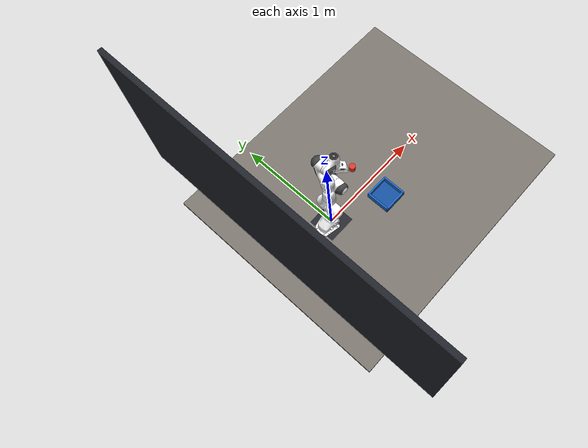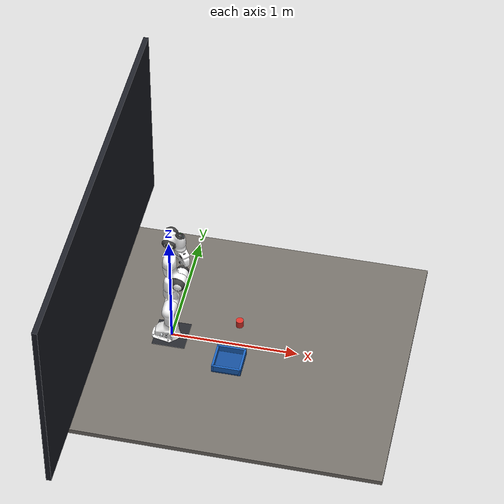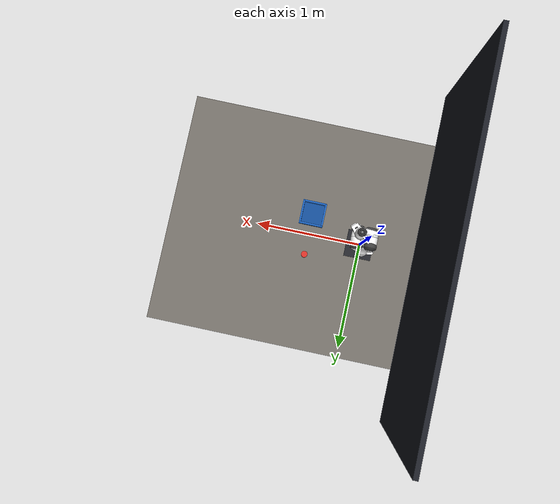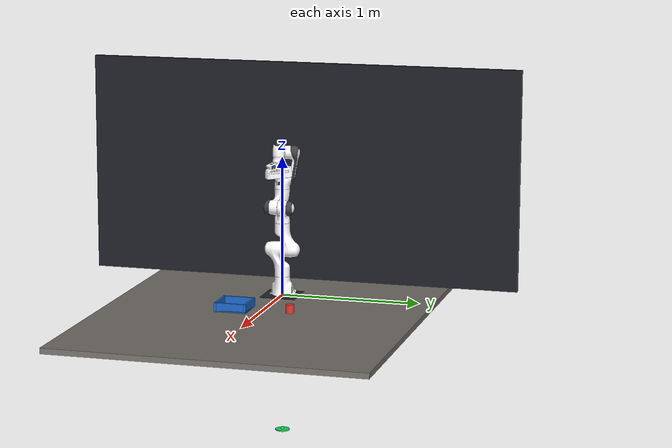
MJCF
<mujoco model="handrobot_panda_pickplace">
  <include file="panda.xml"/>

  <option timestep="0.0016666667" integrator="implicitfast" cone="elliptic" impratio="10"
          iterations="20" ls_iterations="30"/>

  <visual>
    <headlight diffuse="0.32 0.32 0.34" ambient="0.34 0.34 0.37" specular="0.10 0.10 0.10"/>
    <rgba haze="0.09 0.10 0.13 1"/>
    <global azimuth="140" elevation="-24" offwidth="1920" offheight="1088"/>
    <quality shadowsize="8192" offsamples="8"/>
    <map znear="0.01" zfar="20" shadowclip="1.4" shadowscale="0.7" fogstart="4" fogend="9"/>
  </visual>

  <asset>
    <texture type="skybox" builtin="gradient" rgb1="0.13 0.145 0.185" rgb2="0.020 0.022 0.032"
             width="512" height="3072"/>
    <!-- Near-flat with a trace of grain. A checker pattern dominates a
         128-pixel image and hands the policy a strong, useless cue. -->
    <texture type="2d" name="desk_tex" builtin="flat" mark="none"
             rgb1="0.455 0.435 0.410" rgb2="0.455 0.435 0.410"
             markrgb="0.5 0.5 0.5" random="0.005" width="1024" height="1024"/>
    <material name="desk_mat" texture="desk_tex" texuniform="true" texrepeat="2 2"
              reflectance="0.0" specular="0.12" shininess="0.28"/>
    <material name="riser_mat" rgba="0.145 0.152 0.175 1" specular="0.10" shininess="0.15"/>
    <material name="cube_mat" rgba="0.855 0.196 0.161 1" specular="0.42" shininess="0.55"/>
    <material name="bin_wall_mat" rgba="0.106 0.392 0.760 1" specular="0.36" shininess="0.45"/>
    <material name="bin_floor_mat" rgba="0.078 0.302 0.596 1" specular="0.22" shininess="0.30"/>
    <material name="backdrop_mat" rgba="0.115 0.125 0.155 1" specular="0.02" shininess="0.02"/>
  </asset>

  <worldbody>
    <light name="key"  pos="0.75 1.10 1.95" dir="-0.16 -0.42 -1" directional="false"
           diffuse="0.52 0.51 0.49" specular="0.26 0.26 0.26" castshadow="true"
           attenuation="1 0 0"/>
    <light name="fill" pos="0.45 -1.30 1.35" dir="0.06 0.62 -0.78" directional="false"
           diffuse="0.26 0.27 0.31" specular="0.03 0.03 0.03" castshadow="false"
           attenuation="1 0 0"/>
    <light name="rim"  pos="-0.65 0.10 1.05" dir="1 0 -0.55" directional="false"
           diffuse="0.20 0.21 0.25" specular="0.10 0.10 0.10" castshadow="false"
           attenuation="1 0 0"/>

    <!-- Table top is exactly z = 0; every height in the code is measured from it. -->
    <geom name="table" type="box" size="1.30 1.10 0.02" pos="0.55 0 -0.02"
          material="desk_mat" friction="0.9 0.02 0.001" condim="3"/>
    <geom name="base_riser" type="box" size="0.13 0.13 0.002" pos="0 0 0.002"
          material="riser_mat" contype="0" conaffinity="0"/>
    <geom name="backdrop" type="box" size="0.02 1.60 0.80" pos="-0.55 0 0.80"
          material="backdrop_mat" contype="0" conaffinity="0"/>

    <body name="goal_marker" pos="0 0 -1" mocap="true">
      <!-- Opaque and wide on purpose: the policy has to SEE this at 128x128.
           A translucent sliver was invisible to the cameras, and a pushing
           policy trained against it was pushing blind. -->
      <geom name="goal_ring" type="cylinder" size="0.052 0.004"
            rgba="0.10 0.85 0.35 0.95" contype="0" conaffinity="0" group="1"/>
      <geom name="goal_pip" type="cylinder" size="0.013 0.018"
            rgba="0.30 0.95 0.55 0.55" contype="0" conaffinity="0" group="1"/>
    </body>

    <body name="chase_look" pos="0.4 0 0.1" mocap="true">
      <site name="chase_look" size="0.001" group="4" rgba="0 0 0 0"/>
    </body>
    <body name="chase_eye" pos="0.9 0 0.4" mocap="true">
      <camera name="chase_cam" mode="targetbody" target="chase_look" fovy="55"/>
    </body>

    <!-- Aim points for the scene cameras. -->
    <body name="workspace_anchor" pos="0.50 0 0.06" mocap="true">
      <site name="workspace_anchor" size="0.002" group="4" rgba="0 0 0 0"/>
    </body>
    <body name="hero_anchor" pos="0.46 0 0.20" mocap="true">
      <site name="hero_anchor" size="0.002" group="4" rgba="0 0 0 0"/>
    </body>

    <!-- Framed on the region the objects actually live in, not on the whole
         table: at 30 degrees and this distance the workspace fills the panel. -->
    <camera name="front_cam" pos="1.12 0.02 0.46" mode="targetbody"
            target="workspace_anchor" fovy="40"/>
    <camera name="top_cam" pos="0.50 0 0.78" xyaxes="0 1 0  -1 0 0" fovy="41"/>
    <camera name="hero_cam" pos="1.16 0.86 0.66" mode="targetbody"
            target="hero_anchor" fovy="40"/>

    <body name="cube" pos="0.50 0.20 0.030">
      <freejoint name="cube_free"/>
      <inertial pos="0 0 0" mass="0.12" diaginertia="6.3e-5 6.3e-5 5.4e-5"/>
      <geom name="cube" type="cylinder" size="0.030 0.030" material="cube_mat"
            friction="1.1 0.02 0.001" condim="6" solref="0.008 1"/>
    </body>

    <!-- Drop target: a generous open bin. -->
    <body name="bin" pos="0.50 -0.20 0.0">
      <freejoint name="bin_free"/>
      <inertial pos="0 0 0.03" mass="1.2" diaginertia="8e-3 8e-3 1.2e-2"/>
      <geom name="bin_floor" type="box" size="0.115 0.115 0.006" pos="0 0 0.006"
            material="bin_floor_mat" friction="1.0 0.02 0.001" condim="3"/>
      <geom name="bin_wx1" type="box" size="0.008 0.115 0.032" pos=" 0.107 0 0.032"
            material="bin_wall_mat"/>
      <geom name="bin_wx2" type="box" size="0.008 0.115 0.032" pos="-0.107 0 0.032"
            material="bin_wall_mat"/>
      <geom name="bin_wy1" type="box" size="0.115 0.008 0.032" pos="0  0.107 0.032"
            material="bin_wall_mat"/>
      <geom name="bin_wy2" type="box" size="0.115 0.008 0.032" pos="0 -0.107 0.032"
            material="bin_wall_mat"/>
      <site name="bin_center" pos="0 0 0.03" size="0.005" group="4"/>
    </body>
  </worldbody>

  <keyframe>
    <key name="home"
         qpos="0 -0.35 0 -2.10 0 1.80 -0.785 0.04 0.04
               0.50 0.20 0.030 1 0 0 0
               0.50 -0.20 0 1 0 0 0"
         ctrl="0 -0.35 0 -2.10 0 1.80 -0.785 255"/>
  </keyframe>
</mujoco>

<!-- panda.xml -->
<mujoco model="panda">
  <compiler angle="radian" meshdir="assets" autolimits="true"/>

  <option integrator="implicitfast"/>

  <default>
    <default class="panda">
      <material specular="0.5" shininess="0.25"/>
      <joint armature="0.1" damping="1" axis="0 0 1" range="-2.8973 2.8973"/>
      <general dyntype="none" biastype="affine" ctrlrange="-2.8973 2.8973" forcerange="-87 87"/>
      <default class="finger">
        <joint axis="0 1 0" type="slide" range="0 0.04"/>
      </default>

      <default class="visual">
        <geom type="mesh" contype="0" conaffinity="0" group="2"/>
      </default>
      <default class="collision">
        <geom type="mesh" group="3"/>
        <default class="fingertip_pad_collision_1">
          <geom type="box" size="0.0085 0.004 0.0085" pos="0 0.0055 0.0445"/>
        </default>
        <default class="fingertip_pad_collision_2">
          <geom type="box" size="0.003 0.002 0.003" pos="0.0055 0.002 0.05"/>
        </default>
        <default class="fingertip_pad_collision_3">
          <geom type="box" size="0.003 0.002 0.003" pos="-0.0055 0.002 0.05"/>
        </default>
        <default class="fingertip_pad_collision_4">
          <geom type="box" size="0.003 0.002 0.0035" pos="0.0055 0.002 0.0395"/>
        </default>
        <default class="fingertip_pad_collision_5">
          <geom type="box" size="0.003 0.002 0.0035" pos="-0.0055 0.002 0.0395"/>
        </default>
      </default>
    </default>
  </default>

  <asset>
    <material class="panda" name="white" rgba="1 1 1 1"/>
    <material class="panda" name="off_white" rgba="0.901961 0.921569 0.929412 1"/>
    <material class="panda" name="black" rgba="0.25 0.25 0.25 1"/>
    <material class="panda" name="green" rgba="0 1 0 1"/>
    <material class="panda" name="light_blue" rgba="0.039216 0.541176 0.780392 1"/>

    <!-- Collision meshes -->
    <mesh name="link0_c" file="link0.stl"/>
    <mesh name="link1_c" file="link1.stl"/>
    <mesh name="link2_c" file="link2.stl"/>
    <mesh name="link3_c" file="link3.stl"/>
    <mesh name="link4_c" file="link4.stl"/>
    <mesh name="link5_c0" file="link5_collision_0.obj"/>
    <mesh name="link5_c1" file="link5_collision_1.obj"/>
    <mesh name="link5_c2" file="link5_collision_2.obj"/>
    <mesh name="link6_c" file="link6.stl"/>
    <mesh name="link7_c" file="link7.stl"/>
    <mesh name="hand_c" file="hand.stl"/>

    <!-- Visual meshes -->
    <mesh file="link0_0.obj"/>
    <mesh file="link0_1.obj"/>
    <mesh file="link0_2.obj"/>
    <mesh file="link0_3.obj"/>
    <mesh file="link0_4.obj"/>
    <mesh file="link0_5.obj"/>
    <mesh file="link0_7.obj"/>
    <mesh file="link0_8.obj"/>
    <mesh file="link0_9.obj"/>
    <mesh file="link0_10.obj"/>
    <mesh file="link0_11.obj"/>
    <mesh file="link1.obj"/>
    <mesh file="link2.obj"/>
    <mesh file="link3_0.obj"/>
    <mesh file="link3_1.obj"/>
    <mesh file="link3_2.obj"/>
    <mesh file="link3_3.obj"/>
    <mesh file="link4_0.obj"/>
    <mesh file="link4_1.obj"/>
    <mesh file="link4_2.obj"/>
    <mesh file="link4_3.obj"/>
    <mesh file="link5_0.obj"/>
    <mesh file="link5_1.obj"/>
    <mesh file="link5_2.obj"/>
    <mesh file="link6_0.obj"/>
    <mesh file="link6_1.obj"/>
    <mesh file="link6_2.obj"/>
    <mesh file="link6_3.obj"/>
    <mesh file="link6_4.obj"/>
    <mesh file="link6_5.obj"/>
    <mesh file="link6_6.obj"/>
    <mesh file="link6_7.obj"/>
    <mesh file="link6_8.obj"/>
    <mesh file="link6_9.obj"/>
    <mesh file="link6_10.obj"/>
    <mesh file="link6_11.obj"/>
    <mesh file="link6_12.obj"/>
    <mesh file="link6_13.obj"/>
    <mesh file="link6_14.obj"/>
    <mesh file="link6_15.obj"/>
    <mesh file="link6_16.obj"/>
    <mesh file="link7_0.obj"/>
    <mesh file="link7_1.obj"/>
    <mesh file="link7_2.obj"/>
    <mesh file="link7_3.obj"/>
    <mesh file="link7_4.obj"/>
    <mesh file="link7_5.obj"/>
    <mesh file="link7_6.obj"/>
    <mesh file="link7_7.obj"/>
    <mesh file="hand_0.obj"/>
    <mesh file="hand_1.obj"/>
    <mesh file="hand_2.obj"/>
    <mesh file="hand_3.obj"/>
    <mesh file="hand_4.obj"/>
    <mesh file="finger_0.obj"/>
    <mesh file="finger_1.obj"/>
  </asset>

  <worldbody>
    <light name="top" pos="0 0 2" mode="trackcom"/>
    <body name="link0" childclass="panda">
      <inertial mass="0.629769" pos="-0.041018 -0.00014 0.049974"
        fullinertia="0.00315 0.00388 0.004285 8.2904e-7 0.00015 8.2299e-6"/>
      <geom mesh="link0_0" material="off_white" class="visual"/>
      <geom mesh="link0_1" material="black" class="visual"/>
      <geom mesh="link0_2" material="off_white" class="visual"/>
      <geom mesh="link0_3" material="black" class="visual"/>
      <geom mesh="link0_4" material="off_white" class="visual"/>
      <geom mesh="link0_5" material="black" class="visual"/>
      <geom mesh="link0_7" material="white" class="visual"/>
      <geom mesh="link0_8" material="white" class="visual"/>
      <geom mesh="link0_9" material="black" class="visual"/>
      <geom mesh="link0_10" material="off_white" class="visual"/>
      <geom mesh="link0_11" material="white" class="visual"/>
      <geom mesh="link0_c" class="collision"/>
      <body name="link1" pos="0 0 0.333">
        <inertial mass="4.970684" pos="0.003875 0.002081 -0.04762"
          fullinertia="0.70337 0.70661 0.0091170 -0.00013900 0.0067720 0.019169"/>
        <joint name="joint1"/>
        <geom material="white" mesh="link1" class="visual"/>
        <geom mesh="link1_c" class="collision"/>
        <body name="link2" quat="1 -1 0 0">
          <inertial mass="0.646926" pos="-0.003141 -0.02872 0.003495"
            fullinertia="0.0079620 2.8110e-2 2.5995e-2 -3.925e-3 1.0254e-2 7.04e-4"/>
          <joint name="joint2" range="-1.7628 1.7628"/>
          <geom material="white" mesh="link2" class="visual"/>
          <geom mesh="link2_c" class="collision"/>
          <body name="link3" pos="0 -0.316 0" quat="1 1 0 0">
            <joint name="joint3"/>
            <inertial mass="3.228604" pos="2.7518e-2 3.9252e-2 -6.6502e-2"
              fullinertia="3.7242e-2 3.6155e-2 1.083e-2 -4.761e-3 -1.1396e-2 -1.2805e-2"/>
            <geom mesh="link3_0" material="white" class="visual"/>
            <geom mesh="link3_1" material="white" class="visual"/>
            <geom mesh="link3_2" material="white" class="visual"/>
            <geom mesh="link3_3" material="black" class="visual"/>
            <geom mesh="link3_c" class="collision"/>
            <body name="link4" pos="0.0825 0 0" quat="1 1 0 0">
              <inertial mass="3.587895" pos="-5.317e-2 1.04419e-1 2.7454e-2"
                fullinertia="2.5853e-2 1.9552e-2 2.8323e-2 7.796e-3 -1.332e-3 8.641e-3"/>
              <joint name="joint4" range="-3.0718 -0.0698"/>
              <geom mesh="link4_0" material="white" class="visual"/>
              <geom mesh="link4_1" material="white" class="visual"/>
              <geom mesh="link4_2" material="black" class="visual"/>
              <geom mesh="link4_3" material="white" class="visual"/>
              <geom mesh="link4_c" class="collision"/>
              <body name="link5" pos="-0.0825 0.384 0" quat="1 -1 0 0">
                <inertial mass="1.225946" pos="-1.1953e-2 4.1065e-2 -3.8437e-2"
                  fullinertia="3.5549e-2 2.9474e-2 8.627e-3 -2.117e-3 -4.037e-3 2.29e-4"/>
                <joint name="joint5"/>
                <geom mesh="link5_0" material="black" class="visual"/>
                <geom mesh="link5_1" material="white" class="visual"/>
                <geom mesh="link5_2" material="white" class="visual"/>
                <geom mesh="link5_c0" class="collision"/>
                <geom mesh="link5_c1" class="collision"/>
                <geom mesh="link5_c2" class="collision"/>
                <body name="link6" quat="1 1 0 0">
                  <inertial mass="1.666555" pos="6.0149e-2 -1.4117e-2 -1.0517e-2"
                    fullinertia="1.964e-3 4.354e-3 5.433e-3 1.09e-4 -1.158e-3 3.41e-4"/>
                  <joint name="joint6" range="-0.0175 3.7525"/>
                  <geom mesh="link6_0" material="off_white" class="visual"/>
                  <geom mesh="link6_1" material="white" class="visual"/>
                  <geom mesh="link6_2" material="black" class="visual"/>
                  <geom mesh="link6_3" material="white" class="visual"/>
                  <geom mesh="link6_4" material="white" class="visual"/>
                  <geom mesh="link6_5" material="white" class="visual"/>
                  <geom mesh="link6_6" material="white" class="visual"/>
                  <geom mesh="link6_7" material="light_blue" class="visual"/>
                  <geom mesh="link6_8" material="light_blue" class="visual"/>
                  <geom mesh="link6_9" material="black" class="visual"/>
                  <geom mesh="link6_10" material="black" class="visual"/>
                  <geom mesh="link6_11" material="white" class="visual"/>
                  <geom mesh="link6_12" material="green" class="visual"/>
                  <geom mesh="link6_13" material="white" class="visual"/>
                  <geom mesh="link6_14" material="black" class="visual"/>
                  <geom mesh="link6_15" material="black" class="visual"/>
                  <geom mesh="link6_16" material="white" class="visual"/>
                  <geom mesh="link6_c" class="collision"/>
                  <body name="link7" pos="0.088 0 0" quat="1 1 0 0">
                    <inertial mass="7.35522e-01" pos="1.0517e-2 -4.252e-3 6.1597e-2"
                      fullinertia="1.2516e-2 1.0027e-2 4.815e-3 -4.28e-4 -1.196e-3 -7.41e-4"/>
                    <joint name="joint7"/>
                    <geom mesh="link7_0" material="white" class="visual"/>
                    <geom mesh="link7_1" material="black" class="visual"/>
                    <geom mesh="link7_2" material="black" class="visual"/>
                    <geom mesh="link7_3" material="black" class="visual"/>
                    <geom mesh="link7_4" material="black" class="visual"/>
                    <geom mesh="link7_5" material="black" class="visual"/>
                    <geom mesh="link7_6" material="black" class="visual"/>
                    <geom mesh="link7_7" material="white" class="visual"/>
                    <geom mesh="link7_c" class="collision"/>
                    <body name="hand" pos="0 0 0.107" quat="0.9238795 0 0 -0.3826834">
                      <inertial mass="0.73" pos="-0.01 0 0.03" diaginertia="0.001 0.0025 0.0017"/>
                      <geom mesh="hand_0" material="off_white" class="visual"/>
                      <geom mesh="hand_1" material="black" class="visual"/>
                      <geom mesh="hand_2" material="black" class="visual"/>
                      <geom mesh="hand_3" material="white" class="visual"/>
                      <geom mesh="hand_4" material="off_white" class="visual"/>
                      <geom mesh="hand_c" class="collision"/>
                      <!-- Tool centre point: between the fingertips when closed.
                           Everything in the codebase targets this site. -->
                      <site name="tcp" pos="0 0 0.1034" size="0.004" group="4"
                            rgba="0 1 0 0"/>
                      <camera name="wrist_cam" pos="0 -0.10 0.02" quat="0.1736 0.9848 0 0"
                              fovy="70"/>
                      <body name="left_finger" pos="0 0 0.0584">
                        <inertial mass="0.015" pos="0 0 0" diaginertia="2.375e-6 2.375e-6 7.5e-7"/>
                        <joint name="finger_joint1" class="finger"/>
                        <geom mesh="finger_0" material="off_white" class="visual"/>
                        <geom mesh="finger_1" material="black" class="visual"/>
                        <geom mesh="finger_0" class="collision"/>
                        <geom class="fingertip_pad_collision_1"/>
                        <geom class="fingertip_pad_collision_2"/>
                        <geom class="fingertip_pad_collision_3"/>
                        <geom class="fingertip_pad_collision_4"/>
                        <geom class="fingertip_pad_collision_5"/>
                      </body>
                      <body name="right_finger" pos="0 0 0.0584" quat="0 0 0 1">
                        <inertial mass="0.015" pos="0 0 0" diaginertia="2.375e-6 2.375e-6 7.5e-7"/>
                        <joint name="finger_joint2" class="finger"/>
                        <geom mesh="finger_0" material="off_white" class="visual"/>
                        <geom mesh="finger_1" material="black" class="visual"/>
                        <geom mesh="finger_0" class="collision"/>
                        <geom class="fingertip_pad_collision_1"/>
                        <geom class="fingertip_pad_collision_2"/>
                        <geom class="fingertip_pad_collision_3"/>
                        <geom class="fingertip_pad_collision_4"/>
                        <geom class="fingertip_pad_collision_5"/>
                      </body>
                    </body>
                  </body>
                </body>
              </body>
            </body>
          </body>
        </body>
      </body>
    </body>
  </worldbody>

  <tendon>
    <fixed name="split">
      <joint joint="finger_joint1" coef="0.5"/>
      <joint joint="finger_joint2" coef="0.5"/>
    </fixed>
  </tendon>

  <equality>
    <joint joint1="finger_joint1" joint2="finger_joint2" solimp="0.95 0.99 0.001" solref="0.005 1"/>
  </equality>

  <actuator>
    <general class="panda" name="actuator1" joint="joint1" gainprm="4500" biasprm="0 -4500 -450"/>
    <general class="panda" name="actuator2" joint="joint2" gainprm="4500" biasprm="0 -4500 -450"
      ctrlrange="-1.7628 1.7628"/>
    <general class="panda" name="actuator3" joint="joint3" gainprm="3500" biasprm="0 -3500 -350"/>
    <general class="panda" name="actuator4" joint="joint4" gainprm="3500" biasprm="0 -3500 -350"
      ctrlrange="-3.0718 -0.0698"/>
    <general class="panda" name="actuator5" joint="joint5" gainprm="2000" biasprm="0 -2000 -200" forcerange="-12 12"/>
    <general class="panda" name="actuator6" joint="joint6" gainprm="2000" biasprm="0 -2000 -200" forcerange="-12 12"
      ctrlrange="-0.0175 3.7525"/>
    <general class="panda" name="actuator7" joint="joint7" gainprm="2000" biasprm="0 -2000 -200" forcerange="-12 12"/>
    <!-- Remap original ctrlrange (0, 0.04) to (0, 255): 0.04 * 100 / 255 = 0.01568627451 -->
    <general class="panda" name="actuator8" tendon="split" forcerange="-100 100" ctrlrange="0 255"
      gainprm="0.4705882353 0 0" biasprm="0 -3000 -60"/>
  </actuator>

  <keyframe>
    <key name="arm_home" qpos="0 0 0 -1.57079 0 1.57079 -0.7853 0.04 0.04" ctrl="0 0 0 -1.57079 0 1.57079 -0.7853 255"/>
  </keyframe>

  <contact>
    <exclude body1="link0" body2="link1"/>
  </contact>
</mujoco>
